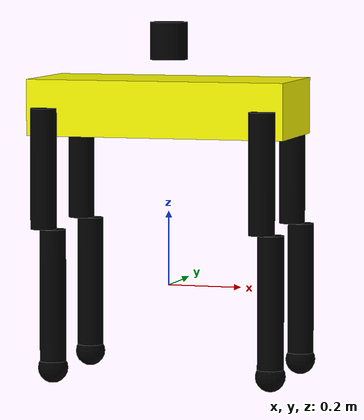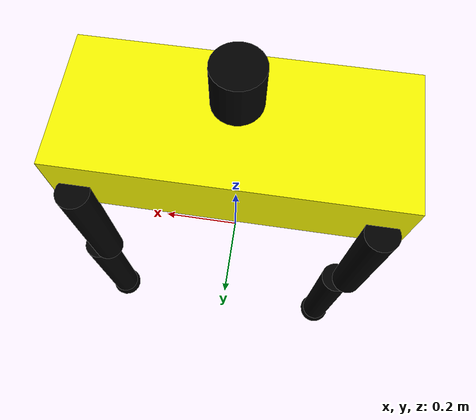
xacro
<?xml version="1.0"?>
<robot name="cavex_walker" xmlns:xacro="http://ros.org/wiki/xacro">

  <!-- Body -->
  <xacro:property name="body_length" value="0.7"/>
  <xacro:property name="body_width" value="0.3"/>
  <xacro:property name="body_height" value="0.15"/>
  <xacro:property name="nominal_height" value="0.48"/> <!-- CHAMP spot_config gait.yaml nominal_height -->

  <!-- Leg geometry (chvmp/robots configs/spot_config/config.json firmware.transforms) -->
  <xacro:property name="hip_x_offset" value="0.29785"/>    <!-- base_link -> hip_joint, front/rear -->
  <xacro:property name="hip_y_offset" value="0.055"/>      <!-- base_link -> hip_joint, left/right -->
  <xacro:property name="thigh_y_offset" value="0.110945"/> <!-- hip_joint -> thigh_joint, lateral -->
  <xacro:property name="thigh_x_offset" value="0.025"/>    <!-- thigh_joint -> knee_joint, forward -->
  <xacro:property name="thigh_length" value="0.3205"/>     <!-- thigh_joint -> knee_joint, vertical -->
  <xacro:property name="shank_length" value="0.37"/>       <!-- knee_joint -> foot, vertical -->
  <xacro:property name="leg_radius" value="0.035"/>

  <link name="base_footprint"/>
  <joint name="base_joint" type="fixed">
    <parent link="base_footprint"/>
    <child link="base_link"/>
    <origin xyz="0 0 ${nominal_height}" rpy="0 0 0"/>
  </joint>

  <link name="base_link">
    <visual>
      <geometry><box size="${body_length} ${body_width} ${body_height}"/></geometry>
      <material name="yellow"><color rgba="1 1 0 1"/></material>
    </visual>
    <collision>
      <geometry><box size="${body_length} ${body_width} ${body_height}"/></geometry>
    </collision>
    <inertial>
      <mass value="20.0"/>
      <inertia ixx="0.2" ixy="0" ixz="0" iyy="0.3" iyz="0" izz="0.3"/>
    </inertial>
  </link>

  <!-- One leg: hip (roll) -> thigh (pitch) -> knee (pitch) -->
  <xacro:macro name="champ_leg" params="prefix x_sign y_sign">
    <link name="${prefix}_hip_link">
      <visual>
        <geometry><cylinder radius="${leg_radius}" length="0.08"/></geometry>
        <origin xyz="0 0 0" rpy="1.5708 0 0"/>
        <material name="black"><color rgba="0 0 0 1"/></material>
      </visual>
      <collision>
        <geometry><cylinder radius="${leg_radius}" length="0.08"/></geometry>
        <origin xyz="0 0 0" rpy="1.5708 0 0"/>
      </collision>
      <inertial>
        <mass value="0.6"/>
        <inertia ixx="0.001" ixy="0" ixz="0" iyy="0.001" iyz="0" izz="0.001"/>
      </inertial>
    </link>
    <joint name="${prefix}_hip_joint" type="revolute">
      <parent link="base_link"/>
      <child link="${prefix}_hip_link"/>
      <origin xyz="${x_sign*hip_x_offset} ${y_sign*hip_y_offset} 0" rpy="0 0 0"/>
      <axis xyz="1 0 0"/>
      <limit lower="-0.75" upper="0.75" effort="20" velocity="10"/>
    </joint>

    <link name="${prefix}_thigh_link">
      <visual>
        <geometry><cylinder radius="${leg_radius}" length="${thigh_length}"/></geometry>
        <origin xyz="0 0 -${thigh_length/2}" rpy="0 0 0"/>
        <material name="black"><color rgba="0 0 0 1"/></material>
      </visual>
      <collision>
        <geometry><cylinder radius="${leg_radius}" length="${thigh_length}"/></geometry>
        <origin xyz="0 0 -${thigh_length/2}" rpy="0 0 0"/>
      </collision>
      <inertial>
        <mass value="0.8"/>
        <inertia ixx="0.002" ixy="0" ixz="0" iyy="0.002" iyz="0" izz="0.001"/>
      </inertial>
    </link>
    <joint name="${prefix}_thigh_joint" type="revolute">
      <parent link="${prefix}_hip_link"/>
      <child link="${prefix}_thigh_link"/>
      <origin xyz="0 ${y_sign*thigh_y_offset} 0" rpy="0 0 0"/>
      <axis xyz="0 1 0"/>
      <limit lower="-1.5" upper="1.5" effort="20" velocity="10"/>
    </joint>

    <link name="${prefix}_knee_link">
      <visual>
        <geometry><cylinder radius="${leg_radius}" length="${shank_length}"/></geometry>
        <origin xyz="0 0 -${shank_length/2}" rpy="0 0 0"/>
        <material name="black"><color rgba="0 0 0 1"/></material>
      </visual>
      <collision>
        <geometry><cylinder radius="${leg_radius}" length="${shank_length}"/></geometry>
        <origin xyz="0 0 -${shank_length/2}" rpy="0 0 0"/>
      </collision>
      <inertial>
        <mass value="0.5"/>
        <inertia ixx="0.002" ixy="0" ixz="0" iyy="0.002" iyz="0" izz="0.001"/>
      </inertial>
    </link>
    <joint name="${prefix}_knee_joint" type="revolute">
      <parent link="${prefix}_thigh_link"/>
      <child link="${prefix}_knee_link"/>
      <origin xyz="${thigh_x_offset} 0 -${thigh_length}" rpy="0 0 0"/>
      <axis xyz="0 1 0"/>
      <limit lower="-2.5" upper="0.0" effort="20" velocity="10"/>
    </joint>

    <link name="${prefix}_foot_link">
      <visual>
        <geometry><sphere radius="0.04"/></geometry>
        <material name="black"><color rgba="0 0 0 1"/></material>
      </visual>
      <collision>
        <geometry><sphere radius="0.04"/></geometry>
      </collision>
      <inertial>
        <mass value="0.1"/>
        <inertia ixx="0.0001" ixy="0" ixz="0" iyy="0.0001" iyz="0" izz="0.0001"/>
      </inertial>
    </link>
    <joint name="${prefix}_foot_joint" type="fixed">
      <parent link="${prefix}_knee_link"/>
      <child link="${prefix}_foot_link"/>
      <origin xyz="0 0 -${shank_length}" rpy="0 0 0"/>
    </joint>
    <gazebo reference="${prefix}_foot_link">
      <mu1>1.5</mu1>
      <mu2>1.5</mu2>
    </gazebo>
  </xacro:macro>

  <xacro:champ_leg prefix="lf" x_sign="1"  y_sign="1"/>
  <xacro:champ_leg prefix="rf" x_sign="1"  y_sign="-1"/>
  <xacro:champ_leg prefix="lh" x_sign="-1" y_sign="1"/>
  <xacro:champ_leg prefix="rh" x_sign="-1" y_sign="-1"/>

  <xacro:macro name="champ_ros2_control_joint" params="name lower upper">
    <joint name="${name}">
      <command_interface name="position">
        <param name="min">${lower}</param>
        <param name="max">${upper}</param>
      </command_interface>
      <state_interface name="position"/>
      <state_interface name="velocity"/>
    </joint>
  </xacro:macro>

  <ros2_control name="GazeboSimSystem" type="system">
    <hardware>
      <plugin>gz_ros2_control/GazeboSimSystem</plugin>
    </hardware>
    <xacro:champ_ros2_control_joint name="lf_hip_joint"   lower="-0.75" upper="0.75"/>
    <xacro:champ_ros2_control_joint name="lf_thigh_joint" lower="-1.5"  upper="1.5"/>
    <xacro:champ_ros2_control_joint name="lf_knee_joint"  lower="-2.5"  upper="0.0"/>
    <xacro:champ_ros2_control_joint name="rf_hip_joint"   lower="-0.75" upper="0.75"/>
    <xacro:champ_ros2_control_joint name="rf_thigh_joint" lower="-1.5"  upper="1.5"/>
    <xacro:champ_ros2_control_joint name="rf_knee_joint"  lower="-2.5"  upper="0.0"/>
    <xacro:champ_ros2_control_joint name="lh_hip_joint"   lower="-0.75" upper="0.75"/>
    <xacro:champ_ros2_control_joint name="lh_thigh_joint" lower="-1.5"  upper="1.5"/>
    <xacro:champ_ros2_control_joint name="lh_knee_joint"  lower="-2.5"  upper="0.0"/>
    <xacro:champ_ros2_control_joint name="rh_hip_joint"   lower="-0.75" upper="0.75"/>
    <xacro:champ_ros2_control_joint name="rh_thigh_joint" lower="-1.5"  upper="1.5"/>
    <xacro:champ_ros2_control_joint name="rh_knee_joint"  lower="-2.5"  upper="0.0"/>
  </ros2_control>

  <!-- Lidar (3D) -->
  <link name="lidar_link">
    <visual>
      <geometry><cylinder radius="0.05" length="0.1"/></geometry>
      <material name="black"><color rgba="0 0 0 1"/></material>
    </visual>
  </link>
  <joint name="lidar_joint" type="fixed">
    <parent link="base_link"/>
    <child link="lidar_link"/>
    <origin xyz="0 0 ${body_height/2 + 0.1}" rpy="0 0 0"/>
  </joint>

  <!-- Camera -->
  <link name="camera_link"/>
  <joint name="camera_joint" type="fixed">
    <parent link="base_link"/>
    <child link="camera_link"/>
    <origin xyz="${body_length/2} 0 0" rpy="0 0 0"/>
  </joint>

  <gazebo reference="lidar_link">
    <sensor type="gpu_lidar" name="lidar_sensor">
      <pose>0 0 0 0 0 0</pose>
      <visualize>false</visualize>
      <update_rate>10</update_rate>
      <topic>lidar/points</topic>
      <gz_frame_id>lidar_link</gz_frame_id>
      <ray>
        <scan>
          <horizontal><samples>360</samples><resolution>1</resolution><min_angle>-3.14</min_angle><max_angle>3.14</max_angle></horizontal>
          <vertical><samples>16</samples><resolution>1</resolution><min_angle>-0.2618</min_angle><max_angle>0.2618</max_angle></vertical>
        </scan>
        <range><min>0.3</min><max>12.0</max></range>
      </ray>
    </sensor>
  </gazebo>

  <gazebo reference="camera_link">
    <sensor type="camera" name="camera_sensor">
      <update_rate>30.0</update_rate>
      <topic>camera/color</topic>
      <gz_frame_id>camera_link</gz_frame_id>
      <camera>
        <horizontal_fov>1.3962634</horizontal_fov>
        <image><width>800</width><height>800</height><format>R8G8B8</format></image>
        <clip><near>0.02</near><far>300</far></clip>
      </camera>
    </sensor>
  </gazebo>

  <gazebo reference="base_link">
    <sensor type="imu" name="imu_sensor">
      <update_rate>50</update_rate>
      <topic>imu</topic>
      <gz_frame_id>base_link</gz_frame_id>
    </sensor>
  </gazebo>

  <gazebo>
    <plugin filename="gz_ros2_control-system" name="gz_ros2_control::GazeboSimROS2ControlPlugin">
      <parameters>$(find cavex_slam_nav)/config/cavex_walker_ros2_control.yaml</parameters>
      <position_proportional_gain>20.0</position_proportional_gain>
    </plugin>
  </gazebo>

  <gazebo>
    <plugin filename="gz-sim-pose-publisher-system" name="gz::sim::systems::PosePublisher">
      <publish_model_pose>true</publish_model_pose>
      <publish_link_pose>false</publish_link_pose>
      <publish_visual_pose>false</publish_visual_pose>
      <publish_collision_pose>false</publish_collision_pose>
      <publish_sensor_pose>false</publish_sensor_pose>
      <publish_nested_model_pose>false</publish_nested_model_pose>
      <use_pose_vector_msg>true</use_pose_vector_msg>
      <static_publisher>false</static_publisher>
      <update_frequency>30</update_frequency>
    </plugin>
  </gazebo>
</robot>
